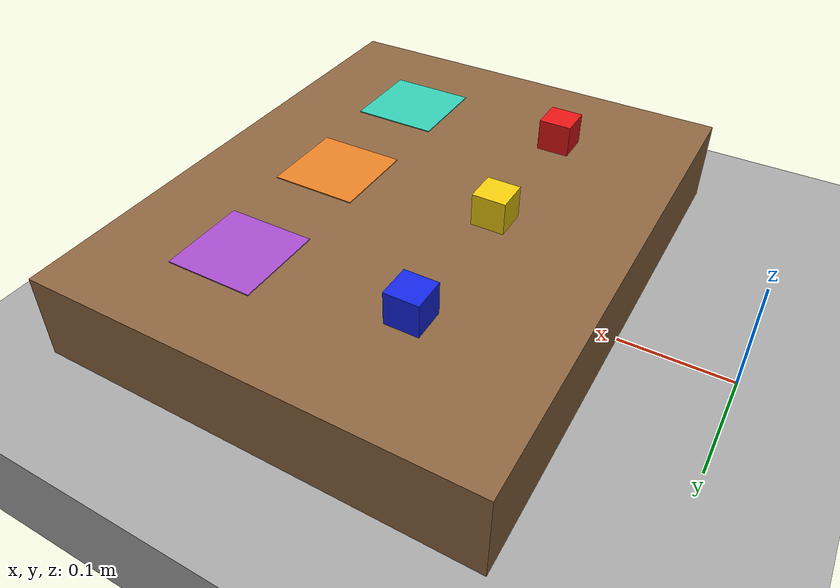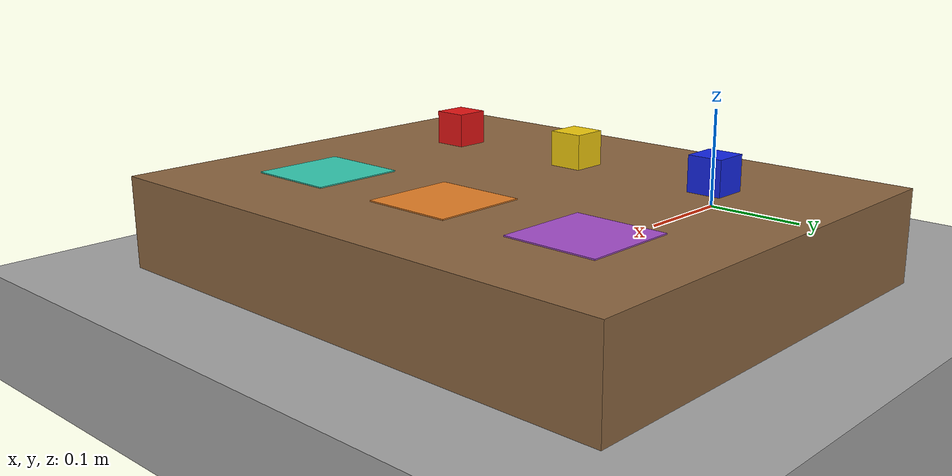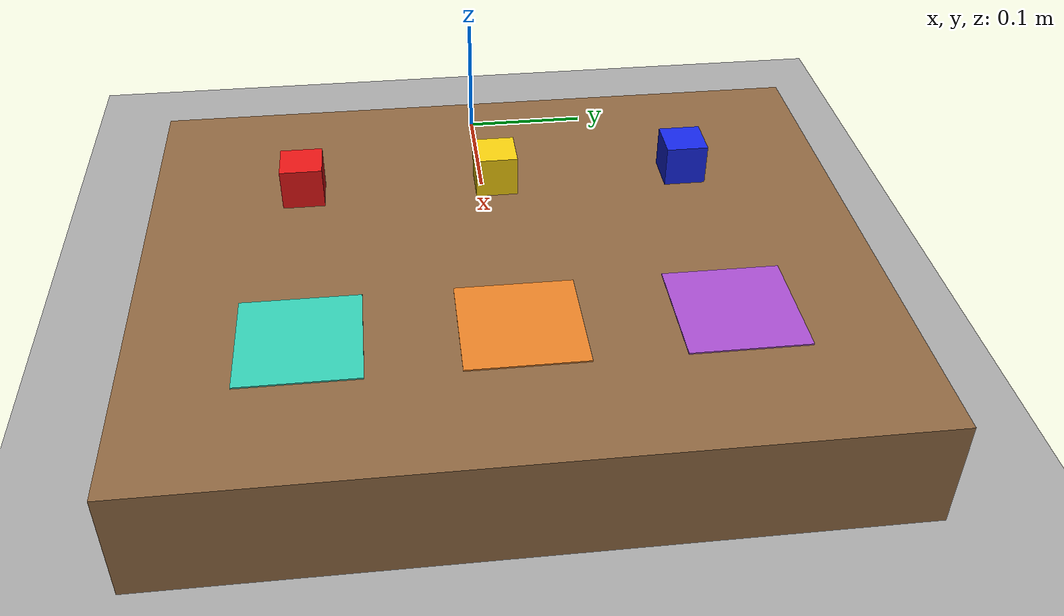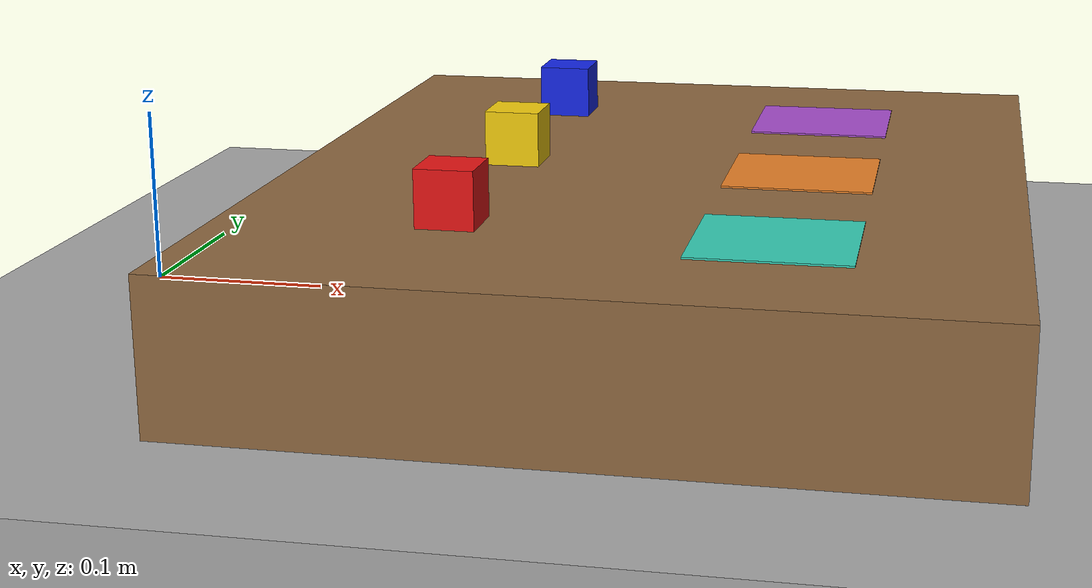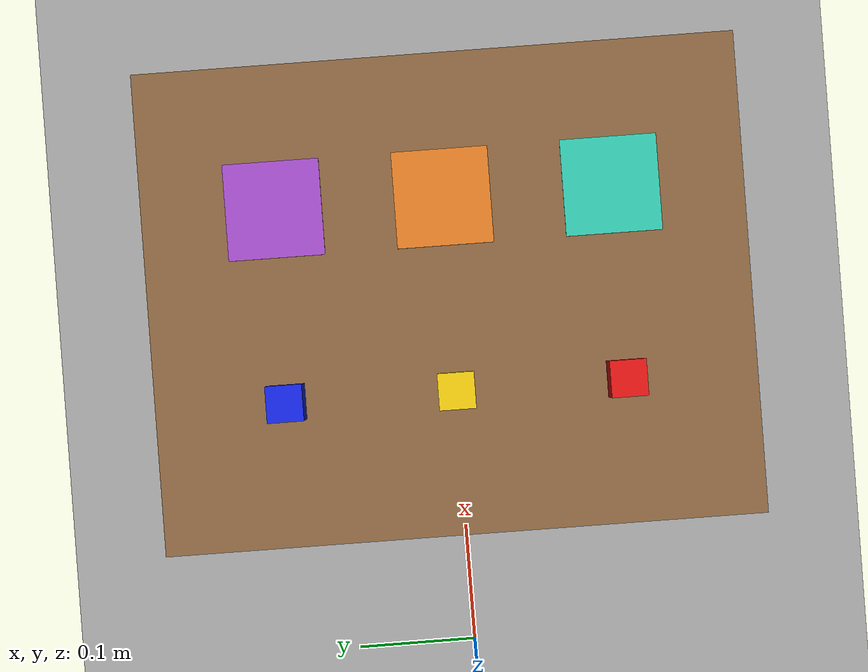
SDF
<?xml version='1.0' encoding='utf-8'?>
<sdf version="1.7">
  <world name="bai2">
    <gravity>0 0 -9.81</gravity>
    <physics name="physics" type="ignored">
      <max_step_size>.001</max_step_size>
      <real_time_factor>1</real_time_factor>
    </physics>
    <plugin filename="libignition-gazebo-physics-system.so" name="ignition::gazebo::systems::Physics" />
    <plugin filename="libignition-gazebo-user-commands-system.so" name="ignition::gazebo::systems::UserCommands" />
    <plugin filename="libignition-gazebo-scene-broadcaster-system.so" name="ignition::gazebo::systems::SceneBroadcaster" />
    <scene>
      <ambient>.6 .6 .6 1</ambient>
      <background>.85 .88 .92 1</background>
      <shadows>true</shadows>
    </scene>
    <light name="sun" type="directional">
      <pose>0 0 10 0 0 0</pose>
      <diffuse>.9 .9 .9 1</diffuse>
      <specular>.2 .2 .2 1</specular>
      <direction>-.5 -.5 -1</direction>
      <cast_shadows>true</cast_shadows>
    </light>
    <model name="ground_plane">
      <static>true</static>
      <pose>0 0 -0.05 0 0 0</pose>
      <link name="link">
        <collision name="collision">
          <geometry>
            <box>
              <size>20 20 0.1</size>
            </box>
          </geometry>
        </collision>
        <visual name="visual">
          <geometry>
            <box>
              <size>20 20 0.1</size>
            </box>
          </geometry>
          <material>
            <ambient>.65 .65 .65 1</ambient>
            <diffuse>.65 .65 .65 1</diffuse>
          </material>
        </visual>
      </link>
    </model>
    <model name="work_table">
      <static>true</static>
      <pose>0.3 0 0.04 0 0 0</pose>
      <link name="link">
        <collision name="collision">
          <geometry>
            <box>
              <size>0.4 0.5 0.08</size>
            </box>
          </geometry>
        </collision>
        <visual name="visual">
          <geometry>
            <box>
              <size>0.4 0.5 0.08</size>
            </box>
          </geometry>
          <material>
            <ambient>.55 .40 .25 1</ambient>
            <diffuse>.55 .40 .25 1</diffuse>
          </material>
        </visual>
      </link>
    </model>
    <model name="red_cube">
      <static>false</static>
      <pose>0.22 -0.14 0.096 0 0 0</pose>
      <link name="link">
        <inertial>
          <mass>0.05</mass>
          <inertia>
            <ixx>7.5e-06</ixx>
            <iyy>7.5e-06</iyy>
            <izz>7.5e-06</izz>
            <ixy>0</ixy>
            <ixz>0</ixz>
            <iyz>0</iyz>
          </inertia>
        </inertial>
        <collision name="collision">
          <geometry>
            <box>
              <size>0.03 0.03 0.03</size>
            </box>
          </geometry>
        </collision>
        <visual name="visual">
          <geometry>
            <box>
              <size>0.03 0.03 0.03</size>
            </box>
          </geometry>
          <material>
            <ambient>.9 .08 .08 1</ambient>
            <diffuse>.9 .08 .08 1</diffuse>
          </material>
        </visual>
      </link>
    </model>
    <model name="yellow_cube">
      <static>false</static>
      <pose>0.22 0 0.096 0 0 0</pose>
      <link name="link">
        <inertial>
          <mass>0.05</mass>
          <inertia>
            <ixx>7.5e-06</ixx>
            <iyy>7.5e-06</iyy>
            <izz>7.5e-06</izz>
            <ixy>0</ixy>
            <ixz>0</ixz>
            <iyz>0</iyz>
          </inertia>
        </inertial>
        <collision name="collision">
          <geometry>
            <box>
              <size>0.03 0.03 0.03</size>
            </box>
          </geometry>
        </collision>
        <visual name="visual">
          <geometry>
            <box>
              <size>0.03 0.03 0.03</size>
            </box>
          </geometry>
          <material>
            <ambient>.95 .8 .05 1</ambient>
            <diffuse>.95 .8 .05 1</diffuse>
          </material>
        </visual>
      </link>
    </model>
    <model name="blue_cube">
      <static>false</static>
      <pose>0.22 0.14 0.096 0 0 0</pose>
      <link name="link">
        <inertial>
          <mass>0.05</mass>
          <inertia>
            <ixx>7.5e-06</ixx>
            <iyy>7.5e-06</iyy>
            <izz>7.5e-06</izz>
            <ixy>0</ixy>
            <ixz>0</ixz>
            <iyz>0</iyz>
          </inertia>
        </inertial>
        <collision name="collision">
          <geometry>
            <box>
              <size>0.03 0.03 0.03</size>
            </box>
          </geometry>
        </collision>
        <visual name="visual">
          <geometry>
            <box>
              <size>0.03 0.03 0.03</size>
            </box>
          </geometry>
          <material>
            <ambient>.08 .15 .9 1</ambient>
            <diffuse>.08 .15 .9 1</diffuse>
          </material>
        </visual>
      </link>
    </model>
    <model name="zone_a">
      <static>true</static>
      <pose>0.38 -0.14 0.0805 0 0 0</pose>
      <link name="link">
        <visual name="visual">
          <geometry>
            <box>
              <size>0.08 0.08 0.001</size>
            </box>
          </geometry>
          <material>
            <ambient>.2 .8 .7 1</ambient>
            <diffuse>.2 .8 .7 1</diffuse>
          </material>
        </visual>
      </link>
    </model>
    <model name="zone_b">
      <static>true</static>
      <pose>0.38 0 0.0805 0 0 0</pose>
      <link name="link">
        <visual name="visual">
          <geometry>
            <box>
              <size>0.08 0.08 0.001</size>
            </box>
          </geometry>
          <material>
            <ambient>.9 .5 .15 1</ambient>
            <diffuse>.9 .5 .15 1</diffuse>
          </material>
        </visual>
      </link>
    </model>
    <model name="zone_c">
      <static>true</static>
      <pose>0.38 0.14 0.0805 0 0 0</pose>
      <link name="link">
        <visual name="visual">
          <geometry>
            <box>
              <size>0.08 0.08 0.001</size>
            </box>
          </geometry>
          <material>
            <ambient>.65 .3 .8 1</ambient>
            <diffuse>.65 .3 .8 1</diffuse>
          </material>
        </visual>
      </link>
    </model>
  </world>
</sdf>
